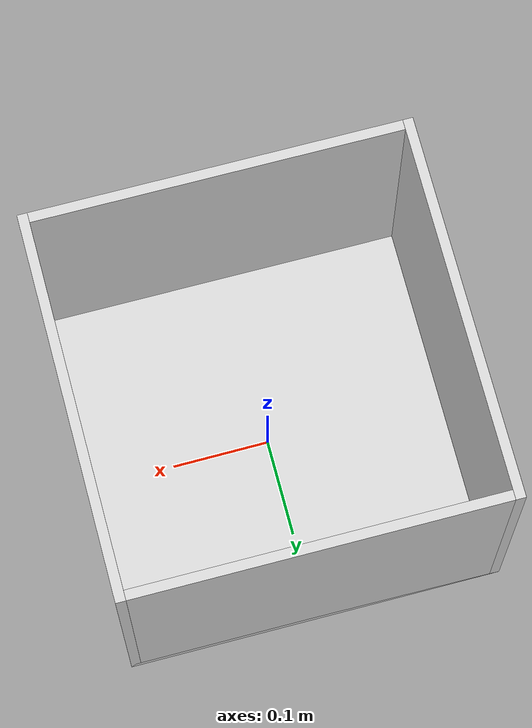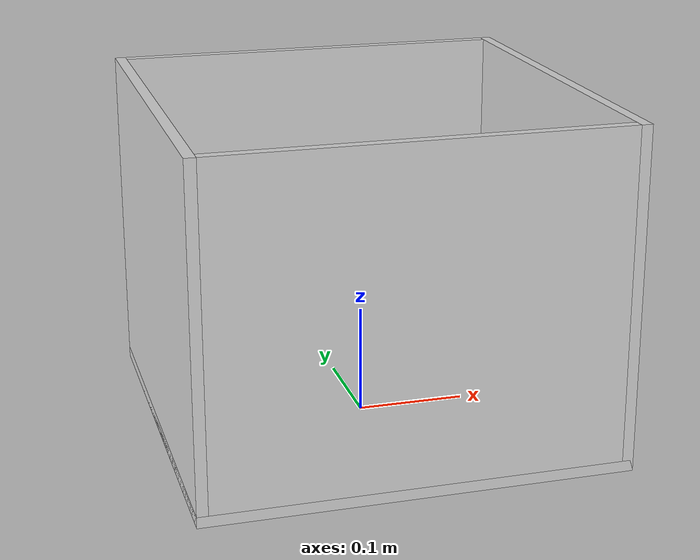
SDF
<?xml version="1.0"?>

<sdf version="1.6">
  <model name="laundry_basket">
    <static>true</static>

    <link name="bottom">
      <pose>0 0 0.005 0 0 0</pose>
      <collision name="c"><geometry><box><size>0.384 0.382 0.01</size></box></geometry></collision>
      <visual name="v"><geometry><box><size>0.384 0.382 0.01</size></box></geometry>
        <material><ambient>0.85 0.85 0.85 1</ambient><diffuse>0.85 0.85 0.85 1</diffuse></material></visual>
    </link>

    <link name="wall_xp">
      <pose>0.187 0 0.155 0 0 0</pose>
      <collision name="c"><geometry><box><size>0.01 0.382 0.31</size></box></geometry></collision>
      <visual name="v"><geometry><box><size>0.01 0.382 0.31</size></box></geometry>
        <material><ambient>0.85 0.85 0.85 1</ambient><diffuse>0.85 0.85 0.85 1</diffuse></material></visual>
    </link>

    <link name="wall_xn">
      <pose>-0.187 0 0.155 0 0 0</pose>
      <collision name="c"><geometry><box><size>0.01 0.382 0.31</size></box></geometry></collision>
      <visual name="v"><geometry><box><size>0.01 0.382 0.31</size></box></geometry>
        <material><ambient>0.85 0.85 0.85 1</ambient><diffuse>0.85 0.85 0.85 1</diffuse></material></visual>
    </link>

    <link name="wall_yp">
      <pose>0 0.186 0.155 0 0 0</pose>
      <collision name="c"><geometry><box><size>0.364 0.01 0.31</size></box></geometry></collision>
      <visual name="v"><geometry><box><size>0.364 0.01 0.31</size></box></geometry>
        <material><ambient>0.85 0.85 0.85 1</ambient><diffuse>0.85 0.85 0.85 1</diffuse></material></visual>
    </link>

    <link name="wall_yn">
      <pose>0 -0.186 0.155 0 0 0</pose>
      <collision name="c"><geometry><box><size>0.364 0.01 0.31</size></box></geometry></collision>
      <visual name="v"><geometry><box><size>0.364 0.01 0.31</size></box></geometry>
        <material><ambient>0.85 0.85 0.85 1</ambient><diffuse>0.85 0.85 0.85 1</diffuse></material></visual>
    </link>

  </model>
</sdf>
